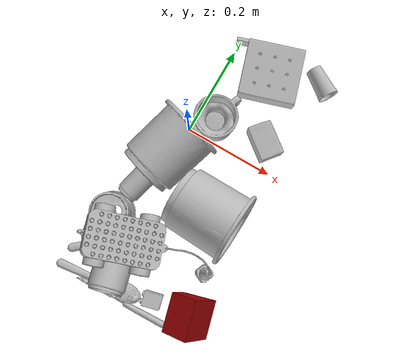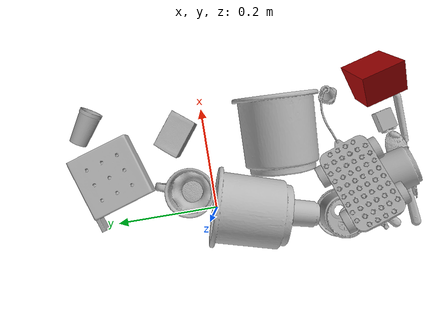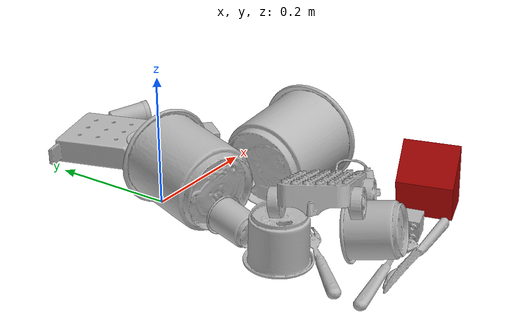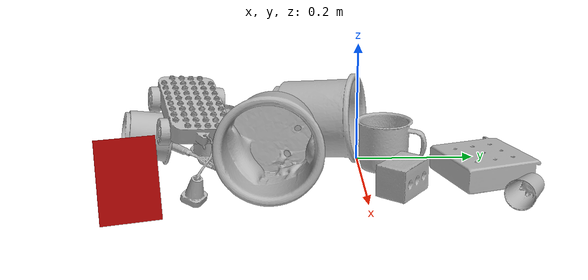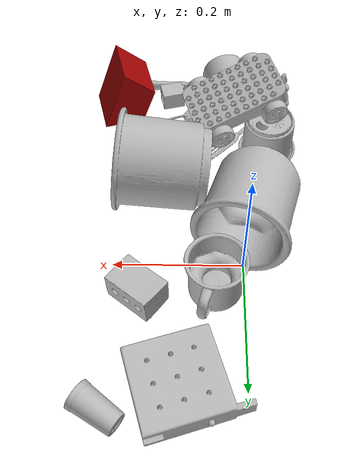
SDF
<sdf version="1.4">
  <world name="default">
    <light name="light1" type="point">
      <pose>0 0 1 0 0 0</pose>
      <diffuse>3 3 3 1</diffuse>
      <specular>3 3 3 1</specular>
    </light>
    <light name="light2" type="point">
      <pose>0 0.5 2 0 0 0</pose>
      <diffuse>1 1 1 1</diffuse>
      <specular>1 1 1 1</specular>
    </light>
    <light name="light3" type="point">
      <pose>0 0.5 2 0 0 0</pose>
      <diffuse>3 3 3 1</diffuse>
      <specular>3 3 3 1</specular>
    </light>
    <scene>
      <ambient>0.7 0.7 0.7</ambient>
    </scene>
    <model name="cup1">
      <link name="link_cup1">
        <collision name="default">
          <geometry>
            <mesh>
              <uri>model://i_cups/collision_meshes/collision.obj</uri>
              <scale>1.0 1.0 1.0</scale>
            </mesh>
          </geometry>
          <surface>
            <friction>
              <ode>
                <mu>0.5</mu>
                <mu2>0.5</mu2>
              </ode>
            </friction>
          <contact>
        <ode>
            <max_vel>0</max_vel>
            <min_depth>0.0001</min_depth>
            <kp>1e8</kp>
        </ode>
    </contact></surface>
        </collision>
        <visual name="default">
          <geometry>
            <mesh>
              <uri>model://i_cups/visual_meshes/visual.dae</uri>
              <scale>1.0 1.0 1.0</scale>
            </mesh>
          </geometry>
        </visual>
        <inertial>
          <mass>0.06118306145071983</mass>
          <pose>0.00011240330786677077 0.00016797454736661166 -0.0008579033892601728 -0.02898356853937009 -0.0398729445813228 -0.3459020996231002</pose>
          <inertia>
            <ixx>8.470886e-05</ixx>
            <iyy>8.5455235e-05</iyy>
            <izz>9.467588e-05</izz>
            <ixy>0</ixy>
            <ixz>0</ixz>
            <iyz>0</iyz>
          </inertia>
        </inertial>
      </link>
      <pose>-0.04932103306055069 -0.24210001528263092 0.03793348744511604 3.1415844921092466 -3.7543885267655076e-05 1.116830650558217</pose>
    </model>
    <model name="silverware1">
      <link name="link_silverware1">
        <collision name="default">
          <geometry>
            <mesh>
              <uri>model://fork/collision_meshes/collision.obj</uri>
              <scale>1.0 1.0 1.0</scale>
            </mesh>
          </geometry>
          <surface>
            <friction>
              <ode>
                <mu>0.5</mu>
                <mu2>0.5</mu2>
              </ode>
            </friction>
          <contact>
        <ode>
            <max_vel>0</max_vel>
            <min_depth>0.0001</min_depth>
            <kp>1e8</kp>
        </ode>
    </contact></surface>
        </collision>
        <visual name="default">
          <geometry>
            <mesh>
              <uri>model://fork/visual_meshes/visual.dae</uri>
              <scale>1.0 1.0 1.0</scale>
            </mesh>
          </geometry>
        </visual>
        <inertial>
          <mass>0.031184576451778412</mass>
          <pose>-0.02957005426287651 0.00046588247641921043 0.0003218861820641905 -0.013551007459636681 -0.010977840933376642 0.014453907264632249</pose>
          <inertia>
            <ixx>1.0931959e-06</ixx>
            <iyy>8.1413935e-05</iyy>
            <izz>8.1902916e-05</izz>
            <ixy>0</ixy>
            <ixz>0</ixz>
            <iyz>0</iyz>
          </inertia>
        </inertial>
      </link>
      <pose>-0.02074277214705944 -0.2889113426208496 0.007446746341884136 -3.0632200879116662 0.0028420704408252235 0.7363176041270353</pose>
    </model>
    <model name="cup2">
      <link name="link_cup2">
        <collision name="default">
          <geometry>
            <mesh>
              <uri>model://cup_small/collision_meshes/collision.obj</uri>
              <scale>1.0 1.0 1.0</scale>
            </mesh>
          </geometry>
          <surface>
            <friction>
              <ode>
                <mu>0.5</mu>
                <mu2>0.5</mu2>
              </ode>
            </friction>
          <contact>
        <ode>
            <max_vel>0</max_vel>
            <min_depth>0.0001</min_depth>
            <kp>1e8</kp>
        </ode>
    </contact></surface>
        </collision>
        <visual name="default">
          <geometry>
            <mesh>
              <uri>model://cup_small/visual_meshes/visual.dae</uri>
              <scale>1.0 1.0 1.0</scale>
            </mesh>
          </geometry>
        </visual>
        <inertial>
          <mass>0.03407767415046692</mass>
          <pose>0.0001048250705935061 -0.00033778452780097723 -0.010742825455963612 -0.011493231776776816 -0.015280154496379641 -0.5058119732839097</pose>
          <inertia>
            <ixx>2.0064415e-05</ixx>
            <iyy>2.0167918e-05</iyy>
            <izz>9.059144e-06</izz>
            <ixy>0</ixy>
            <ixz>0</ixz>
            <iyz>0</iyz>
          </inertia>
        </inertial>
      </link>
      <pose>0.19998683035373688 0.2312256097793579 0.020075011998414993 1.4134595854073742 0.9854938483806924 0.8415233450403096</pose>
    </model>
    <model name="silverware2">
      <link name="link_silverware2">
        <collision name="default">
          <geometry>
            <mesh>
              <uri>model://spoon/collision_meshes/collision.obj</uri>
              <scale>1.0 1.0 1.0</scale>
            </mesh>
          </geometry>
          <surface>
            <friction>
              <ode>
                <mu>0.5</mu>
                <mu2>0.5</mu2>
              </ode>
            </friction>
          <contact>
        <ode>
            <max_vel>0</max_vel>
            <min_depth>0.0001</min_depth>
            <kp>1e8</kp>
        </ode>
    </contact></surface>
        </collision>
        <visual name="default">
          <geometry>
            <mesh>
              <uri>model://spoon/visual_meshes/visual.dae</uri>
              <scale>1.0 1.0 1.0</scale>
            </mesh>
          </geometry>
        </visual>
        <inertial>
          <mass>0.016614587977528572</mass>
          <pose>-0.005526317749172449 -0.0016034182626754045 -0.0007271657232195139 0.03521671066550848 -0.039065848782153245 0.0061506117821598484</pose>
          <inertia>
            <ixx>9.241303e-07</ixx>
            <iyy>6.321795e-05</iyy>
            <izz>6.367369e-05</izz>
            <ixy>0</ixy>
            <ixz>0</ixz>
            <iyz>0</iyz>
          </inertia>
        </inertial>
      </link>
      <pose>-0.0011876998469233513 -0.38138917088508606 0.010948698967695236 2.9727222578138535 -0.061901343896335725 0.11680640834467915</pose>
    </model>
    <model name="cup3">
      <link name="link_cup3">
        <collision name="default">
          <geometry>
            <mesh>
              <uri>model://mug/collision_meshes/collision.obj</uri>
              <scale>1.0 1.0 1.0</scale>
            </mesh>
          </geometry>
          <surface>
            <friction>
              <ode>
                <mu>0.5</mu>
                <mu2>0.5</mu2>
              </ode>
            </friction>
          <contact>
        <ode>
            <max_vel>0</max_vel>
            <min_depth>0.0001</min_depth>
            <kp>1e8</kp>
        </ode>
    </contact></surface>
        </collision>
        <visual name="default">
          <geometry>
            <mesh>
              <uri>model://mug/visual_meshes/visual.dae</uri>
              <scale>1.0 1.0 1.0</scale>
            </mesh>
          </geometry>
        </visual>
        <inertial>
          <mass>0.2187051922082901</mass>
          <pose>0.009571668691933155 0.0008143252925947309 -0.0109473317861557 -0.1298317614392908 0.08737757629698793 0.05507296169044089</pose>
          <inertia>
            <ixx>0.00021724429</ixx>
            <iyy>0.00024264908</iyy>
            <izz>0.00028062687</izz>
            <ixy>0</ixy>
            <ixz>0</ixz>
            <iyz>0</iyz>
          </inertia>
        </inertial>
      </link>
      <pose>0.04610059782862663 0.05185653269290924 0.04094904661178589 -2.920746886903629e-06 2.7033727027349193e-06 -1.9071306971959368</pose>
    </model>
    <model name="silverware3">
      <link name="link_silverware3">
        <collision name="default">
          <geometry>
            <mesh>
              <uri>model://knife/collision_meshes/collision.obj</uri>
              <scale>1.0 1.0 1.0</scale>
            </mesh>
          </geometry>
          <surface>
            <friction>
              <ode>
                <mu>0.5</mu>
                <mu2>0.5</mu2>
              </ode>
            </friction>
          <contact>
        <ode>
            <max_vel>0</max_vel>
            <min_depth>0.0001</min_depth>
            <kp>1e8</kp>
        </ode>
    </contact></surface>
        </collision>
        <visual name="default">
          <geometry>
            <mesh>
              <uri>model://knife/visual_meshes/visual.dae</uri>
              <scale>1.0 1.0 1.0</scale>
            </mesh>
          </geometry>
        </visual>
        <inertial>
          <mass>0.02527560666203499</mass>
          <pose>-0.02378525398671627 0.0015275124460458755 5.062016498413868e-05 0.07305987488321217 0.01724841707462807 -0.007409821427235137</pose>
          <inertia>
            <ixx>7.174241e-07</ixx>
            <iyy>9.710476e-05</iyy>
            <izz>9.733581e-05</izz>
            <ixy>0</ixy>
            <ixz>0</ixz>
            <iyz>0</iyz>
          </inertia>
        </inertial>
      </link>
      <pose>0.06146402657032013 -0.3942333161830902 0.009975199587643147 -1.531828195856241 0.01342030570179821 -3.103170888320274</pose>
    </model>
    <model name="cup4">
      <link name="link_cup4">
        <collision name="default">
          <geometry>
            <mesh>
              <uri>model://f_cups/collision_meshes/collision.obj</uri>
              <scale>2.0 2.0 2.0</scale>
            </mesh>
          </geometry>
          <surface>
            <friction>
              <ode>
                <mu>0.5</mu>
                <mu2>0.5</mu2>
              </ode>
            </friction>
          <contact>
        <ode>
            <max_vel>0</max_vel>
            <min_depth>0.0001</min_depth>
            <kp>1e8</kp>
        </ode>
    </contact></surface>
        </collision>
        <visual name="default">
          <geometry>
            <mesh>
              <uri>model://f_cups/visual_meshes/visual.dae</uri>
              <scale>2.0 2.0 2.0</scale>
            </mesh>
          </geometry>
        </visual>
        <inertial>
          <mass>0.45639780163764954</mass>
          <pose>-0.006342936772853136 -0.0012480145087465644 -0.007311072666198015 0.7862311529960513 -0.2607925047248709 -0.18237200478465204</pose>
          <inertia>
            <ixx>0.0017161043</ixx>
            <iyy>0.0018002132</iyy>
            <izz>0.0018740727</izz>
            <ixy>0</ixy>
            <ixz>0</ixz>
            <iyz>0</iyz>
          </inertia>
        </inertial>
      </link>
      <pose>0.12667390704154968 -0.14159874618053436 0.0745450034737587 1.461139547291734 -0.5210199464497954 1.5867726298998872</pose>
    </model>
    <model name="cup41">
      <link name="link_cup41">
        <collision name="default">
          <geometry>
            <mesh>
              <uri>model://b_cups/collision_meshes/collision.obj</uri>
              <scale>1.0 1.0 1.0</scale>
            </mesh>
          </geometry>
          <surface>
            <friction>
              <ode>
                <mu>0.5</mu>
                <mu2>0.5</mu2>
              </ode>
            </friction>
          <contact>
        <ode>
            <max_vel>0</max_vel>
            <min_depth>0.0001</min_depth>
            <kp>1e8</kp>
        </ode>
    </contact></surface>
        </collision>
        <visual name="default">
          <geometry>
            <mesh>
              <uri>model://b_cups/visual_meshes/visual.dae</uri>
              <scale>1.0 1.0 1.0</scale>
            </mesh>
          </geometry>
        </visual>
        <inertial>
          <mass>0.02191556617617607</mass>
          <pose>0.0005182005115784705 0.0018058598507195711 -0.0013381809694692492 0.11356347292067202 0.038725069075056226 -0.34569439603942165</pose>
          <inertia>
            <ixx>1.4345273e-05</ixx>
            <iyy>1.4072923e-05</iyy>
            <izz>1.2071279e-05</izz>
            <ixy>0</ixy>
            <ixz>0</ixz>
            <iyz>0</iyz>
          </inertia>
        </inertial>
      </link>
      <pose>-0.03497651591897011 -0.1639043688774109 0.027648234739899635 -1.4301541186808375 0.8652953547115014 -0.1499151919302767</pose>
    </model>
    <model name="cup5">
      <link name="link_cup5">
        <collision name="default">
          <geometry>
            <mesh>
              <uri>model://e_cups/collision_meshes/collision.obj</uri>
              <scale>2.0 2.0 2.0</scale>
            </mesh>
          </geometry>
          <surface>
            <friction>
              <ode>
                <mu>0.5</mu>
                <mu2>0.5</mu2>
              </ode>
            </friction>
          <contact>
        <ode>
            <max_vel>0</max_vel>
            <min_depth>0.0001</min_depth>
            <kp>1e8</kp>
        </ode>
    </contact></surface>
        </collision>
        <visual name="default">
          <geometry>
            <mesh>
              <uri>model://e_cups/visual_meshes/visual.dae</uri>
              <scale>2.0 2.0 2.0</scale>
            </mesh>
          </geometry>
        </visual>
        <inertial>
          <mass>0.30448246002197266</mass>
          <pose>0.0022711469791829586 0.005759572610259056 -0.00776594178751111 0.6952384510578399 0.08767941436067322 -0.5235260729612989</pose>
          <inertia>
            <ixx>0.0010739095</ixx>
            <iyy>0.001122389</iyy>
            <izz>0.0010267813</izz>
            <ixy>0</ixy>
            <ixz>0</ixz>
            <iyz>0</iyz>
          </inertia>
        </inertial>
      </link>
      <pose>-0.009727288968861103 -0.06721148639917374 0.06930127739906311 -1.4844723948019563 -0.03571048522585922 -0.2937978606243673</pose>
    </model>
    <model name="cup51">
      <link name="link_cup51">
        <collision name="default">
          <geometry>
            <mesh>
              <uri>model://h_cups/collision_meshes/collision.obj</uri>
              <scale>1.0 1.0 1.0</scale>
            </mesh>
          </geometry>
          <surface>
            <friction>
              <ode>
                <mu>0.5</mu>
                <mu2>0.5</mu2>
              </ode>
            </friction>
          <contact>
        <ode>
            <max_vel>0</max_vel>
            <min_depth>0.0001</min_depth>
            <kp>1e8</kp>
        </ode>
    </contact></surface>
        </collision>
        <visual name="default">
          <geometry>
            <mesh>
              <uri>model://h_cups/visual_meshes/visual.dae</uri>
              <scale>1.0 1.0 1.0</scale>
            </mesh>
          </geometry>
        </visual>
        <inertial>
          <mass>0.042455922812223434</mass>
          <pose>-2.703044083318673e-05 0.00023018660431262106 -0.0018405403243377805 -0.024361995264993386 0.06545231449212868 0.1288536550905752</pose>
          <inertia>
            <ixx>5.4829856e-05</ixx>
            <iyy>5.4175573e-05</iyy>
            <izz>5.7501496e-05</izz>
            <ixy>0</ixy>
            <ixz>0</ixz>
            <iyz>0</iyz>
          </inertia>
        </inertial>
      </link>
      <pose>0.017873000353574753 -0.35155653953552246 0.051981087774038315 1.7854692931189273 0.5345444351809246 -2.7662192980191933</pose>
    </model>
    <model name="toy1">
      <link name="link_toy1">
        <collision name="default">
          <geometry>
            <mesh>
              <uri>model://f_lego_duplo/collision_meshes/collision.obj</uri>
              <scale>1.0 1.0 1.0</scale>
            </mesh>
          </geometry>
          <surface>
            <friction>
              <ode>
                <mu>0.5</mu>
                <mu2>0.5</mu2>
              </ode>
            </friction>
          <contact>
        <ode>
            <max_vel>0</max_vel>
            <min_depth>0.0001</min_depth>
            <kp>1e8</kp>
        </ode>
    </contact></surface>
        </collision>
        <visual name="default">
          <geometry>
            <mesh>
              <uri>model://f_lego_duplo/visual_meshes/visual.dae</uri>
              <scale>1.0 1.0 1.0</scale>
            </mesh>
          </geometry>
        </visual>
        <inertial>
          <mass>0.02241816557943821</mass>
          <pose>2.3694117771810852e-05 0.0001339316659141332 0.0018837875686585903 0.029838520561624126 -0.014425134948969536 -0.6756620822172864</pose>
          <inertia>
            <ixx>4.7370827e-06</ixx>
            <iyy>4.779284e-06</iyy>
            <izz>4.1119874e-06</izz>
            <ixy>0</ixy>
            <ixz>0</ixz>
            <iyz>0</iyz>
          </inertia>
        </inertial>
      </link>
      <pose>0.11683067679405212 -0.35744839906692505 0.016202859580516815 1.8148958652717 1.5707519162839954 -1.0896633653157202</pose>
    </model>
    <model name="toy2">
      <link name="link_toy2">
        <collision name="default">
          <geometry>
            <mesh>
              <uri>model://nine_hole_peg_test/collision_meshes/collision.obj</uri>
              <scale>1.0 1.0 1.0</scale>
            </mesh>
          </geometry>
          <surface>
            <friction>
              <ode>
                <mu>0.5</mu>
                <mu2>0.5</mu2>
              </ode>
            </friction>
          <contact>
        <ode>
            <max_vel>0</max_vel>
            <min_depth>0.0001</min_depth>
            <kp>1e8</kp>
        </ode>
    </contact></surface>
        </collision>
        <visual name="default">
          <geometry>
            <mesh>
              <uri>model://nine_hole_peg_test/visual_meshes/visual.dae</uri>
              <scale>1.0 1.0 1.0</scale>
            </mesh>
          </geometry>
        </visual>
        <inertial>
          <mass>0.9336897134780884</mass>
          <pose>-0.004617386497557163 -0.009647615253925323 2.6460686058271676e-05 -0.0014666796876693252 0.0007194179493738156 -0.6342417556307235</pose>
          <inertia>
            <ixx>0.0014599775</ixx>
            <iyy>0.0013631656</iyy>
            <izz>0.0025583105</izz>
            <ixy>0</ixy>
            <ixz>0</ixz>
            <iyz>0</iyz>
          </inertia>
        </inertial>
      </link>
      <pose>0.08334490656852722 0.19591395556926727 0.020771006122231483 -1.7663078229904593e-08 -4.373120684796538e-08 1.8807419059232542</pose>
    </model>
    <model name="toy3">
      <link name="link_toy3">
        <collision name="default">
          <geometry>
            <mesh>
              <uri>model://prism/collision_meshes/collision.obj</uri>
              <scale>1.0 1.0 1.0</scale>
            </mesh>
          </geometry>
          <surface>
            <friction>
              <ode>
                <mu>0.5</mu>
                <mu2>0.5</mu2>
              </ode>
            </friction>
          <contact>
        <ode>
            <max_vel>0</max_vel>
            <min_depth>0.0001</min_depth>
            <kp>1e8</kp>
        </ode>
    </contact></surface>
        </collision>
        <visual name="default">
          <geometry>
            <mesh>
              <uri>model://prism/visual_meshes/visual.dae</uri>
              <scale>1.0 1.0 1.0</scale>
            </mesh>
          </geometry>
        </visual>
        <inertial>
          <mass>0.45664992928504944</mass>
          <pose>-9.85359656624496e-05 -4.96157269935793e-07 -0.0033869100734591484 0.0 0.006559178903460961 0.0</pose>
          <inertia>
            <ixx>0.0004121209</ixx>
            <iyy>0.00049805344</iyy>
            <izz>0.0006100559</izz>
            <ixy>0</ixy>
            <ixz>0</ixz>
            <iyz>0</iyz>
          </inertia>
        </inertial>
      </link>
      <pose>0.19842194020748138 -0.34572309255599976 0.04270760715007782 -3.141592465735824 1.1942062386693115 0.2612174750859163</pose>
    </model>
    <model name="toy4">
      <link name="link_toy4">
        <collision name="default">
          <geometry>
            <mesh>
              <uri>model://g_lego_duplo/collision_meshes/collision.obj</uri>
              <scale>1.0 1.0 1.0</scale>
            </mesh>
          </geometry>
          <surface>
            <friction>
              <ode>
                <mu>0.5</mu>
                <mu2>0.5</mu2>
              </ode>
            </friction>
          <contact>
        <ode>
            <max_vel>0</max_vel>
            <min_depth>0.0001</min_depth>
            <kp>1e8</kp>
        </ode>
    </contact></surface>
        </collision>
        <visual name="default">
          <geometry>
            <mesh>
              <uri>model://g_lego_duplo/visual_meshes/visual.dae</uri>
              <scale>1.0 1.0 1.0</scale>
            </mesh>
          </geometry>
        </visual>
        <inertial>
          <mass>0.39620378613471985</mass>
          <pose>-0.05004769191145897 0.0017554654041305184 0.003880677744746208 0.010963058510667364 0.03810828654928447 -0.09653021192595126</pose>
          <inertia>
            <ixx>0.0005741041</ixx>
            <iyy>0.0017357017</iyy>
            <izz>0.0021714251</izz>
            <ixy>0</ixy>
            <ixz>0</ixz>
            <iyz>0</iyz>
          </inertia>
        </inertial>
      </link>
      <pose>0.06483563035726547 -0.26164692640304565 0.07236312329769135 -0.11911930123752519 0.31786142512904797 0.3048604705240879</pose>
    </model>
    <model name="toy5">
      <link name="link_toy5">
        <collision name="default">
          <geometry>
            <mesh>
              <uri>model://foam_brick/collision_meshes/collision.obj</uri>
              <scale>1.0 1.0 1.0</scale>
            </mesh>
          </geometry>
          <surface>
            <friction>
              <ode>
                <mu>0.5</mu>
                <mu2>0.5</mu2>
              </ode>
            </friction>
          <contact>
        <ode>
            <max_vel>0</max_vel>
            <min_depth>0.0001</min_depth>
            <kp>1e8</kp>
        </ode>
    </contact></surface>
        </collision>
        <visual name="default">
          <geometry>
            <mesh>
              <uri>model://foam_brick/visual_meshes/visual.dae</uri>
              <scale>1.0 1.0 1.0</scale>
            </mesh>
          </geometry>
        </visual>
        <inertial>
          <mass>0.10564772039651871</mass>
          <pose>-0.00025224717683158815 0.00034584361128509045 -0.00025321010616607964 -0.29402271699624904 0.017274444128295662 -0.0007449905040366932</pose>
          <inertia>
            <ixx>4.6148893e-05</ixx>
            <iyy>7.367908e-05</iyy>
            <izz>7.4615455e-05</izz>
            <ixy>0</ixy>
            <ixz>0</ixz>
            <iyz>0</iyz>
          </inertia>
        </inertial>
      </link>
      <pose>0.15696382522583008 0.055034492164850235 0.025910697877407074 1.5828206757346373 -0.00037574348744647896 2.4902523167973745</pose>
    </model>
  <physics type="ode">
      <max_contacts>50</max_contacts>
      <ode>
        <solver>
          <type>quick</type>
          <iters>75</iters>
        </solver>
        <constraints>
          <contact_max_correcting_vel>0</contact_max_correcting_vel>
          <contact_surface_layer>0</contact_surface_layer>
        </constraints>
      </ode>
    </physics></world>
</sdf>
